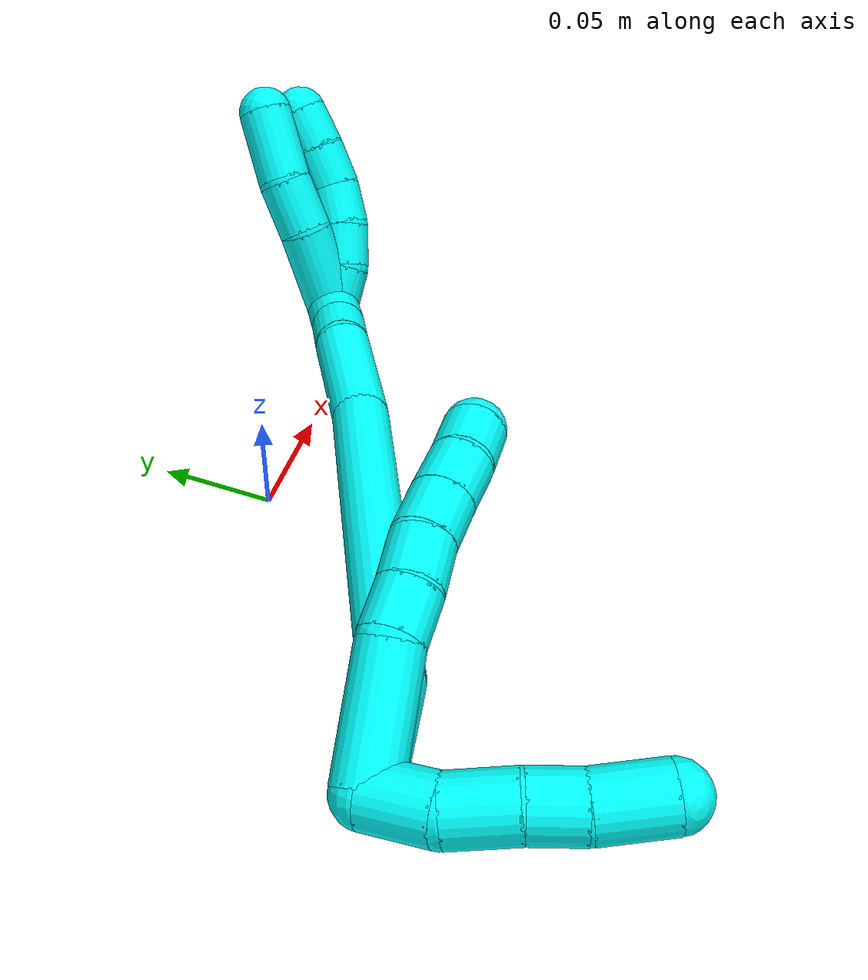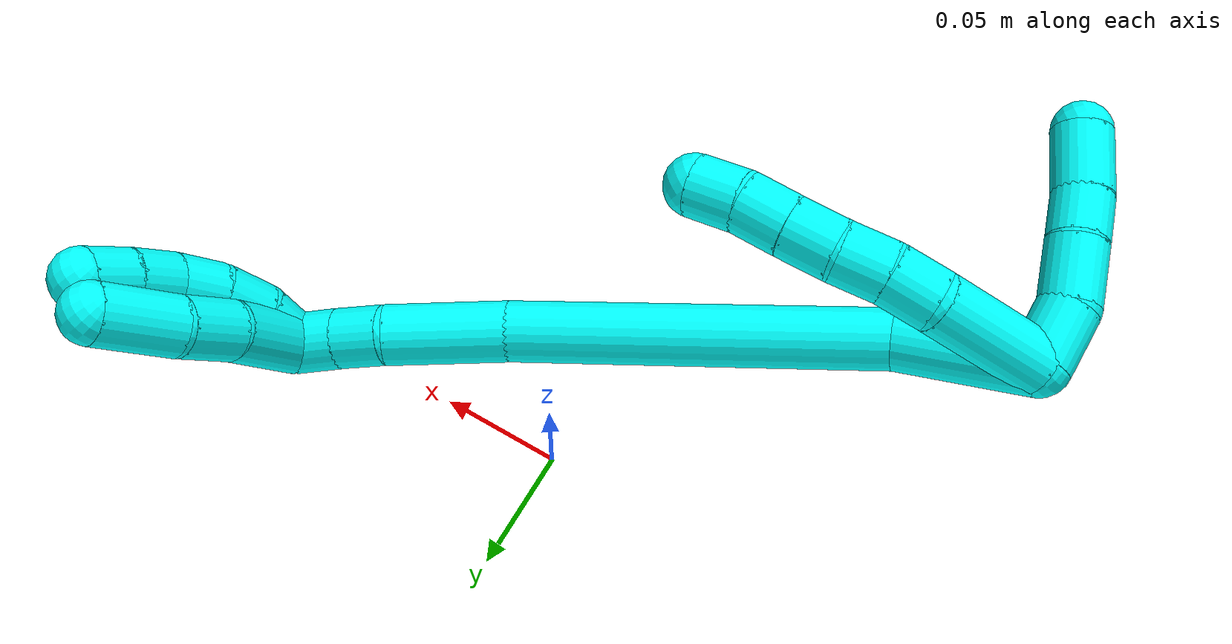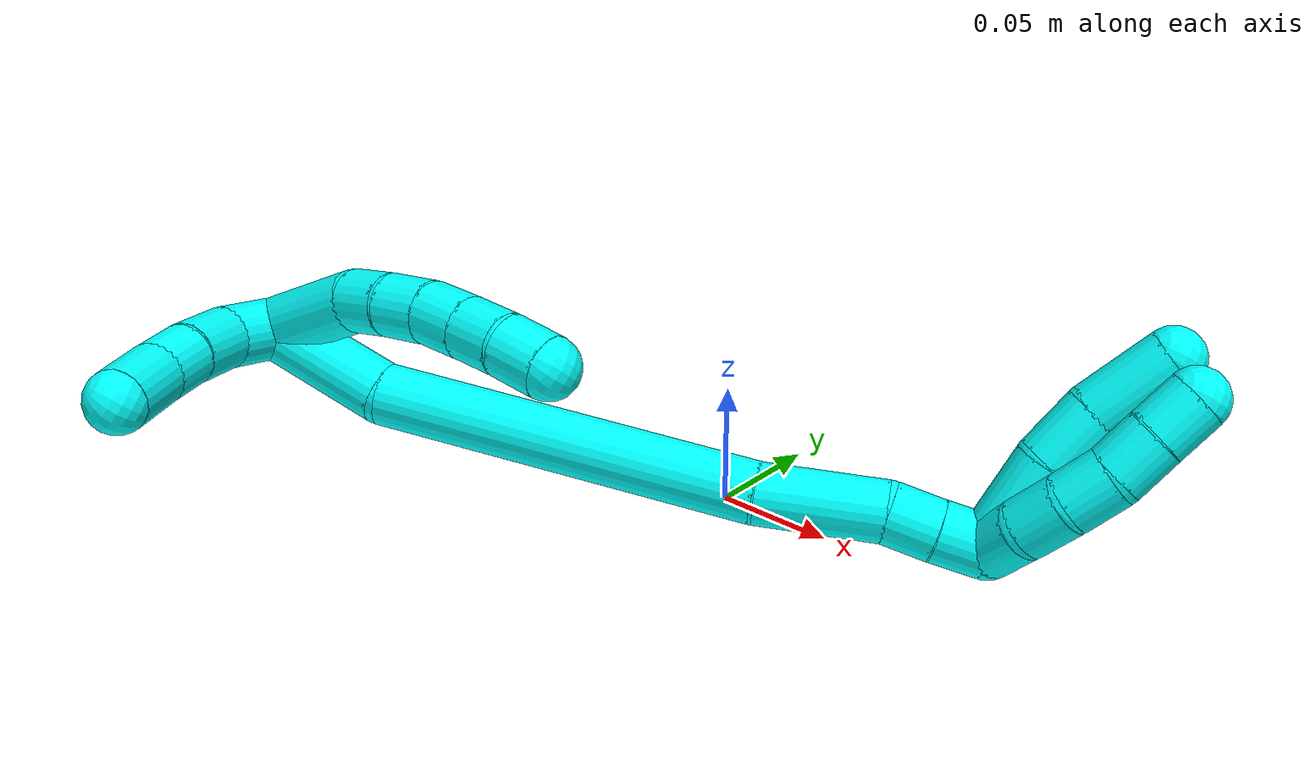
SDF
<sdf version="1.7">
 <world name="default">
  <model name="3">
   <static>0</static>
   <link name="3">
    <collision name="collision-cylinder-e_1_2_8">
     <pose>0.016312 0.017372 -0.006121 -1.90957 0.724807 -0.98343</pose>
     <geometry><cylinder><radius>0.0125</radius><length>0.049207</length></cylinder></geometry>
     <surface>
      <friction><ode><mu>1.16</mu><mu2>1.16</mu2><slip1>0</slip1><slip2>0</slip2></ode></friction>
      <contact><ode><kp>1e+06</kp><kd>1</kd><max_vel>0</max_vel><min_depth>0.001</min_depth></ode></contact>
     </surface>
    </collision>
    <visual name="visual-cylinder-e_1_2_8">
     <pose>0.016312 0.017372 -0.006121 -1.90957 0.724807 -0.98343</pose>
     <geometry><cylinder><radius>0.0125</radius><length>0.049207</length></cylinder></geometry>
     <material><ambient>0.003922 1 0.996078 1</ambient></material>
    </visual>
    <collision name="collision-cylinder-e_2_8_9">
     <pose>0.040752 0.039375 -0.016051 -2.25896 0.93523 -1.63744</pose>
     <geometry><cylinder><radius>0.0125</radius><length>0.020203</length></cylinder></geometry>
     <surface>
      <friction><ode><mu>1.16</mu><mu2>1.16</mu2><slip1>0</slip1><slip2>0</slip2></ode></friction>
      <contact><ode><kp>1e+06</kp><kd>1</kd><max_vel>0</max_vel><min_depth>0.001</min_depth></ode></contact>
     </surface>
    </collision>
    <visual name="visual-cylinder-e_2_8_9">
     <pose>0.040752 0.039375 -0.016051 -2.25896 0.93523 -1.63744</pose>
     <geometry><cylinder><radius>0.0125</radius><length>0.020203</length></cylinder></geometry>
     <material><ambient>0.003922 1 0.996078 1</ambient></material>
    </visual>
    <collision name="collision-cylinder-e_3_9_10">
     <pose>0.056436 0.048388 -0.024809 -2.41713 0.852023 -1.75008</pose>
     <geometry><cylinder><radius>0.0125</radius><length>0.020077</length></cylinder></geometry>
     <surface>
      <friction><ode><mu>1.16</mu><mu2>1.16</mu2><slip1>0</slip1><slip2>0</slip2></ode></friction>
      <contact><ode><kp>1e+06</kp><kd>1</kd><max_vel>0</max_vel><min_depth>0.001</min_depth></ode></contact>
     </surface>
    </collision>
    <visual name="visual-cylinder-e_3_9_10">
     <pose>0.056436 0.048388 -0.024809 -2.41713 0.852023 -1.75008</pose>
     <geometry><cylinder><radius>0.0125</radius><length>0.020077</length></cylinder></geometry>
     <material><ambient>0.003922 1 0.996078 1</ambient></material>
    </visual>
    <collision name="collision-cylinder-e_4_10_11">
     <pose>0.072403 0.055692 -0.034754 -2.61202 0.9681 -2.18929</pose>
     <geometry><cylinder><radius>0.0125</radius><length>0.020421</length></cylinder></geometry>
     <surface>
      <friction><ode><mu>1.16</mu><mu2>1.16</mu2><slip1>0</slip1><slip2>0</slip2></ode></friction>
      <contact><ode><kp>1e+06</kp><kd>1</kd><max_vel>0</max_vel><min_depth>0.001</min_depth></ode></contact>
     </surface>
    </collision>
    <visual name="visual-cylinder-e_4_10_11">
     <pose>0.072403 0.055692 -0.034754 -2.61202 0.9681 -2.18929</pose>
     <geometry><cylinder><radius>0.0125</radius><length>0.020421</length></cylinder></geometry>
     <material><ambient>0.003922 1 0.996078 1</ambient></material>
    </visual>
    <collision name="collision-cylinder-e_5_11_12">
     <pose>0.089229 0.061285 -0.044487 -2.62861 0.997072 -2.24371</pose>
     <geometry><cylinder><radius>0.0125</radius><length>0.020039</length></cylinder></geometry>
     <surface>
      <friction><ode><mu>1.16</mu><mu2>1.16</mu2><slip1>0</slip1><slip2>0</slip2></ode></friction>
      <contact><ode><kp>1e+06</kp><kd>1</kd><max_vel>0</max_vel><min_depth>0.001</min_depth></ode></contact>
     </surface>
    </collision>
    <visual name="visual-cylinder-e_5_11_12">
     <pose>0.089229 0.061285 -0.044487 -2.62861 0.997072 -2.24371</pose>
     <geometry><cylinder><radius>0.0125</radius><length>0.020039</length></cylinder></geometry>
     <material><ambient>0.003922 1 0.996078 1</ambient></material>
    </visual>
    <collision name="collision-cylinder-e_6_12_6">
     <pose>0.105307 0.066025 -0.055353 -2.81575 0.869673 -2.46132</pose>
     <geometry><cylinder><radius>0.0125</radius><length>0.020054</length></cylinder></geometry>
     <surface>
      <friction><ode><mu>1.16</mu><mu2>1.16</mu2><slip1>0</slip1><slip2>0</slip2></ode></friction>
      <contact><ode><kp>1e+06</kp><kd>1</kd><max_vel>0</max_vel><min_depth>0.001</min_depth></ode></contact>
     </surface>
    </collision>
    <visual name="visual-cylinder-e_6_12_6">
     <pose>0.105307 0.066025 -0.055353 -2.81575 0.869673 -2.46132</pose>
     <geometry><cylinder><radius>0.0125</radius><length>0.020054</length></cylinder></geometry>
     <material><ambient>0.003922 1 0.996078 1</ambient></material>
    </visual>
    <collision name="collision-cylinder-e_1_2_13">
     <pose>0.007383 -0.004744 0.009331 0.470357 0.614264 0.151703</pose>
     <geometry><cylinder><radius>0.0125</radius><length>0.02562</length></cylinder></geometry>
     <surface>
      <friction><ode><mu>1.16</mu><mu2>1.16</mu2><slip1>0</slip1><slip2>0</slip2></ode></friction>
      <contact><ode><kp>1e+06</kp><kd>1</kd><max_vel>0</max_vel><min_depth>0.001</min_depth></ode></contact>
     </surface>
    </collision>
    <visual name="visual-cylinder-e_1_2_13">
     <pose>0.007383 -0.004744 0.009331 0.470357 0.614264 0.151703</pose>
     <geometry><cylinder><radius>0.0125</radius><length>0.02562</length></cylinder></geometry>
     <material><ambient>0.003922 1 0.996078 1</ambient></material>
    </visual>
    <collision name="collision-cylinder-e_2_13_14">
     <pose>0.025455 -0.012914 0.025652 0.455692 0.941399 0.234889</pose>
     <geometry><cylinder><radius>0.0125</radius><length>0.026446</length></cylinder></geometry>
     <surface>
      <friction><ode><mu>1.16</mu><mu2>1.16</mu2><slip1>0</slip1><slip2>0</slip2></ode></friction>
      <contact><ode><kp>1e+06</kp><kd>1</kd><max_vel>0</max_vel><min_depth>0.001</min_depth></ode></contact>
     </surface>
    </collision>
    <visual name="visual-cylinder-e_2_13_14">
     <pose>0.025455 -0.012914 0.025652 0.455692 0.941399 0.234889</pose>
     <geometry><cylinder><radius>0.0125</radius><length>0.026446</length></cylinder></geometry>
     <material><ambient>0.003922 1 0.996078 1</ambient></material>
    </visual>
    <collision name="collision-cylinder-e_3_14_15">
     <pose>0.044163 -0.020063 0.037364 0.667719 0.927352 0.343451</pose>
     <geometry><cylinder><radius>0.0125</radius><length>0.020047</length></cylinder></geometry>
     <surface>
      <friction><ode><mu>1.16</mu><mu2>1.16</mu2><slip1>0</slip1><slip2>0</slip2></ode></friction>
      <contact><ode><kp>1e+06</kp><kd>1</kd><max_vel>0</max_vel><min_depth>0.001</min_depth></ode></contact>
     </surface>
    </collision>
    <visual name="visual-cylinder-e_3_14_15">
     <pose>0.044163 -0.020063 0.037364 0.667719 0.927352 0.343451</pose>
     <geometry><cylinder><radius>0.0125</radius><length>0.020047</length></cylinder></geometry>
     <material><ambient>0.003922 1 0.996078 1</ambient></material>
    </visual>
    <collision name="collision-cylinder-e_4_15_5">
     <pose>0.064307 -0.027604 0.047817 0.587567 1.05428 0.348627</pose>
     <geometry><cylinder><radius>0.0125</radius><length>0.027888</length></cylinder></geometry>
     <surface>
      <friction><ode><mu>1.16</mu><mu2>1.16</mu2><slip1>0</slip1><slip2>0</slip2></ode></friction>
      <contact><ode><kp>1e+06</kp><kd>1</kd><max_vel>0</max_vel><min_depth>0.001</min_depth></ode></contact>
     </surface>
    </collision>
    <visual name="visual-cylinder-e_4_15_5">
     <pose>0.064307 -0.027604 0.047817 0.587567 1.05428 0.348627</pose>
     <geometry><cylinder><radius>0.0125</radius><length>0.027888</length></cylinder></geometry>
     <material><ambient>0.003922 1 0.996078 1</ambient></material>
    </visual>
    <collision name="collision-cylinder-e_1_2_16">
     <pose>0.018332 0.004117 -0.020783 -2.94604 0.713271 -2.62673</pose>
     <geometry><cylinder><radius>0.0125</radius><length>0.056034</length></cylinder></geometry>
     <surface>
      <friction><ode><mu>1.16</mu><mu2>1.16</mu2><slip1>0</slip1><slip2>0</slip2></ode></friction>
      <contact><ode><kp>1e+06</kp><kd>1</kd><max_vel>0</max_vel><min_depth>0.001</min_depth></ode></contact>
     </surface>
    </collision>
    <visual name="visual-cylinder-e_1_2_16">
     <pose>0.018332 0.004117 -0.020783 -2.94604 0.713271 -2.62673</pose>
     <geometry><cylinder><radius>0.0125</radius><length>0.056034</length></cylinder></geometry>
     <material><ambient>0.003922 1 0.996078 1</ambient></material>
    </visual>
    <collision name="collision-cylinder-e_2_16_17">
     <pose>0.073889 0.037243 -0.101993 -2.69401 0.506955 -1.69985</pose>
     <geometry><cylinder><radius>0.0125</radius><length>0.153343</length></cylinder></geometry>
     <surface>
      <friction><ode><mu>1.16</mu><mu2>1.16</mu2><slip1>0</slip1><slip2>0</slip2></ode></friction>
      <contact><ode><kp>1e+06</kp><kd>1</kd><max_vel>0</max_vel><min_depth>0.001</min_depth></ode></contact>
     </surface>
    </collision>
    <visual name="visual-cylinder-e_2_16_17">
     <pose>0.073889 0.037243 -0.101993 -2.69401 0.506955 -1.69985</pose>
     <geometry><cylinder><radius>0.0125</radius><length>0.153343</length></cylinder></geometry>
     <material><ambient>0.003922 1 0.996078 1</ambient></material>
    </visual>
    <collision name="collision-cylinder-e_3_17_18">
     <pose>0.121468 0.078323 -0.182026 -2.58976 0.422574 -1.29661</pose>
     <geometry><cylinder><radius>0.0125</radius><length>0.050493</length></cylinder></geometry>
     <surface>
      <friction><ode><mu>1.16</mu><mu2>1.16</mu2><slip1>0</slip1><slip2>0</slip2></ode></friction>
      <contact><ode><kp>1e+06</kp><kd>1</kd><max_vel>0</max_vel><min_depth>0.001</min_depth></ode></contact>
     </surface>
    </collision>
    <visual name="visual-cylinder-e_3_17_18">
     <pose>0.121468 0.078323 -0.182026 -2.58976 0.422574 -1.29661</pose>
     <geometry><cylinder><radius>0.0125</radius><length>0.050493</length></cylinder></geometry>
     <material><ambient>0.003922 1 0.996078 1</ambient></material>
    </visual>
    <collision name="collision-cylinder-e_4_18_19">
     <pose>0.136161 0.093027 -0.210254 -2.84512 0.448653 -1.98256</pose>
     <geometry><cylinder><radius>0.0125</radius><length>0.020006</length></cylinder></geometry>
     <surface>
      <friction><ode><mu>1.16</mu><mu2>1.16</mu2><slip1>0</slip1><slip2>0</slip2></ode></friction>
      <contact><ode><kp>1e+06</kp><kd>1</kd><max_vel>0</max_vel><min_depth>0.001</min_depth></ode></contact>
     </surface>
    </collision>
    <visual name="visual-cylinder-e_4_18_19">
     <pose>0.136161 0.093027 -0.210254 -2.84512 0.448653 -1.98256</pose>
     <geometry><cylinder><radius>0.0125</radius><length>0.020006</length></cylinder></geometry>
     <material><ambient>0.003922 1 0.996078 1</ambient></material>
    </visual>
    <collision name="collision-cylinder-e_5_19_1">
     <pose>0.14446 0.098659 -0.227624 -2.81146 0.404586 -1.77733</pose>
     <geometry><cylinder><radius>0.0125</radius><length>0.020124</length></cylinder></geometry>
     <surface>
      <friction><ode><mu>1.16</mu><mu2>1.16</mu2><slip1>0</slip1><slip2>0</slip2></ode></friction>
      <contact><ode><kp>1e+06</kp><kd>1</kd><max_vel>0</max_vel><min_depth>0.001</min_depth></ode></contact>
     </surface>
    </collision>
    <visual name="visual-cylinder-e_5_19_1">
     <pose>0.14446 0.098659 -0.227624 -2.81146 0.404586 -1.77733</pose>
     <geometry><cylinder><radius>0.0125</radius><length>0.020124</length></cylinder></geometry>
     <material><ambient>0.003922 1 0.996078 1</ambient></material>
    </visual>
    <collision name="collision-cylinder-e_1_1_20">
     <pose>0.148947 0.121455 -0.234786 -1.49073 0.026453 -0.024416</pose>
     <geometry><cylinder><radius>0.0125</radius><length>0.039738</length></cylinder></geometry>
     <surface>
      <friction><ode><mu>1.16</mu><mu2>1.16</mu2><slip1>0</slip1><slip2>0</slip2></ode></friction>
      <contact><ode><kp>1e+06</kp><kd>1</kd><max_vel>0</max_vel><min_depth>0.001</min_depth></ode></contact>
     </surface>
    </collision>
    <visual name="visual-cylinder-e_1_1_20">
     <pose>0.148947 0.121455 -0.234786 -1.49073 0.026453 -0.024416</pose>
     <geometry><cylinder><radius>0.0125</radius><length>0.039738</length></cylinder></geometry>
     <material><ambient>0.003922 1 0.996078 1</ambient></material>
    </visual>
    <collision name="collision-cylinder-e_2_20_21">
     <pose>0.1501 0.153864 -0.234495 -1.67334 0.049479 -0.054829</pose>
     <geometry><cylinder><radius>0.0125</radius><length>0.025385</length></cylinder></geometry>
     <surface>
      <friction><ode><mu>1.16</mu><mu2>1.16</mu2><slip1>0</slip1><slip2>0</slip2></ode></friction>
      <contact><ode><kp>1e+06</kp><kd>1</kd><max_vel>0</max_vel><min_depth>0.001</min_depth></ode></contact>
     </surface>
    </collision>
    <visual name="visual-cylinder-e_2_20_21">
     <pose>0.1501 0.153864 -0.234495 -1.67334 0.049479 -0.054829</pose>
     <geometry><cylinder><radius>0.0125</radius><length>0.025385</length></cylinder></geometry>
     <material><ambient>0.003922 1 0.996078 1</ambient></material>
    </visual>
    <collision name="collision-cylinder-e_3_21_4">
     <pose>0.154507 0.183068 -0.239598 -1.79622 0.218454 -0.273597</pose>
     <geometry><cylinder><radius>0.0125</radius><length>0.034877</length></cylinder></geometry>
     <surface>
      <friction><ode><mu>1.16</mu><mu2>1.16</mu2><slip1>0</slip1><slip2>0</slip2></ode></friction>
      <contact><ode><kp>1e+06</kp><kd>1</kd><max_vel>0</max_vel><min_depth>0.001</min_depth></ode></contact>
     </surface>
    </collision>
    <visual name="visual-cylinder-e_3_21_4">
     <pose>0.154507 0.183068 -0.239598 -1.79622 0.218454 -0.273597</pose>
     <geometry><cylinder><radius>0.0125</radius><length>0.034877</length></cylinder></geometry>
     <material><ambient>0.003922 1 0.996078 1</ambient></material>
    </visual>
    <collision name="collision-cylinder-e_1_1_22">
     <pose>0.154703 0.109401 -0.23562 -1.47372 0.679251 -0.620459</pose>
     <geometry><cylinder><radius>0.0125</radius><length>0.02</length></cylinder></geometry>
     <surface>
      <friction><ode><mu>1.16</mu><mu2>1.16</mu2><slip1>0</slip1><slip2>0</slip2></ode></friction>
      <contact><ode><kp>1e+06</kp><kd>1</kd><max_vel>0</max_vel><min_depth>0.001</min_depth></ode></contact>
     </surface>
    </collision>
    <visual name="visual-cylinder-e_1_1_22">
     <pose>0.154703 0.109401 -0.23562 -1.47372 0.679251 -0.620459</pose>
     <geometry><cylinder><radius>0.0125</radius><length>0.02</length></cylinder></geometry>
     <material><ambient>0.003922 1 0.996078 1</ambient></material>
    </visual>
    <collision name="collision-cylinder-e_2_22_23">
     <pose>0.165476 0.126021 -0.235887 -1.6853 0.465728 -0.51997</pose>
     <geometry><cylinder><radius>0.0125</radius><length>0.02</length></cylinder></geometry>
     <surface>
      <friction><ode><mu>1.16</mu><mu2>1.16</mu2><slip1>0</slip1><slip2>0</slip2></ode></friction>
      <contact><ode><kp>1e+06</kp><kd>1</kd><max_vel>0</max_vel><min_depth>0.001</min_depth></ode></contact>
     </surface>
    </collision>
    <visual name="visual-cylinder-e_2_22_23">
     <pose>0.165476 0.126021 -0.235887 -1.6853 0.465728 -0.51997</pose>
     <geometry><cylinder><radius>0.0125</radius><length>0.02</length></cylinder></geometry>
     <material><ambient>0.003922 1 0.996078 1</ambient></material>
    </visual>
    <collision name="collision-cylinder-e_3_23_24">
     <pose>0.172703 0.144257 -0.239126 -1.8035 0.277141 -0.34917</pose>
     <geometry><cylinder><radius>0.0125</radius><length>0.02</length></cylinder></geometry>
     <surface>
      <friction><ode><mu>1.16</mu><mu2>1.16</mu2><slip1>0</slip1><slip2>0</slip2></ode></friction>
      <contact><ode><kp>1e+06</kp><kd>1</kd><max_vel>0</max_vel><min_depth>0.001</min_depth></ode></contact>
     </surface>
    </collision>
    <visual name="visual-cylinder-e_3_23_24">
     <pose>0.172703 0.144257 -0.239126 -1.8035 0.277141 -0.34917</pose>
     <geometry><cylinder><radius>0.0125</radius><length>0.02</length></cylinder></geometry>
     <material><ambient>0.003922 1 0.996078 1</ambient></material>
    </visual>
    <collision name="collision-cylinder-e_4_24_25">
     <pose>0.176136 0.163491 -0.242755 -1.71277 0.06977 -0.080441</pose>
     <geometry><cylinder><radius>0.0125</radius><length>0.02</length></cylinder></geometry>
     <surface>
      <friction><ode><mu>1.16</mu><mu2>1.16</mu2><slip1>0</slip1><slip2>0</slip2></ode></friction>
      <contact><ode><kp>1e+06</kp><kd>1</kd><max_vel>0</max_vel><min_depth>0.001</min_depth></ode></contact>
     </surface>
    </collision>
    <visual name="visual-cylinder-e_4_24_25">
     <pose>0.176136 0.163491 -0.242755 -1.71277 0.06977 -0.080441</pose>
     <geometry><cylinder><radius>0.0125</radius><length>0.02</length></cylinder></geometry>
     <material><ambient>0.003922 1 0.996078 1</ambient></material>
    </visual>
    <collision name="collision-cylinder-e_5_25_3">
     <pose>0.177079 0.183169 -0.24613 -1.76852 0.024611 -0.030029</pose>
     <geometry><cylinder><radius>0.0125</radius><length>0.02</length></cylinder></geometry>
     <surface>
      <friction><ode><mu>1.16</mu><mu2>1.16</mu2><slip1>0</slip1><slip2>0</slip2></ode></friction>
      <contact><ode><kp>1e+06</kp><kd>1</kd><max_vel>0</max_vel><min_depth>0.001</min_depth></ode></contact>
     </surface>
    </collision>
    <visual name="visual-cylinder-e_5_25_3">
     <pose>0.177079 0.183169 -0.24613 -1.76852 0.024611 -0.030029</pose>
     <geometry><cylinder><radius>0.0125</radius><length>0.02</length></cylinder></geometry>
     <material><ambient>0.003922 1 0.996078 1</ambient></material>
    </visual>
    <collision name="collision-sphere-3">
     <pose>0.177326 0.192971 -0.248094 0 -0 0</pose>
     <geometry><sphere><radius>0.0125</radius></sphere></geometry>
     <surface>
      <friction><ode><mu>1.16</mu><mu2>1.16</mu2><slip1>0</slip1><slip2>0</slip2></ode></friction>
      <contact><ode><kp>1e+06</kp><kd>1</kd><max_vel>0</max_vel><min_depth>0.001</min_depth></ode></contact>
     </surface>
    </collision>
    <visual name="visual-sphere-3">
     <pose>0.177326 0.192971 -0.248094 0 -0 0</pose>
     <geometry><sphere><radius>0.0125</radius></sphere></geometry>
     <material><ambient>0.003922 1 0.996078 1</ambient></material>
    </visual>
    <collision name="collision-sphere-25">
     <pose>0.176833 0.173366 -0.244167 0 -0 0</pose>
     <geometry><sphere><radius>0.0125</radius></sphere></geometry>
     <surface>
      <friction><ode><mu>1.16</mu><mu2>1.16</mu2><slip1>0</slip1><slip2>0</slip2></ode></friction>
      <contact><ode><kp>1e+06</kp><kd>1</kd><max_vel>0</max_vel><min_depth>0.001</min_depth></ode></contact>
     </surface>
    </collision>
    <visual name="visual-sphere-25">
     <pose>0.176833 0.173366 -0.244167 0 -0 0</pose>
     <geometry><sphere><radius>0.0125</radius></sphere></geometry>
     <material><ambient>0.003922 1 0.996078 1</ambient></material>
    </visual>
    <collision name="collision-sphere-24">
     <pose>0.175439 0.153616 -0.241344 0 -0 0</pose>
     <geometry><sphere><radius>0.0125</radius></sphere></geometry>
     <surface>
      <friction><ode><mu>1.16</mu><mu2>1.16</mu2><slip1>0</slip1><slip2>0</slip2></ode></friction>
      <contact><ode><kp>1e+06</kp><kd>1</kd><max_vel>0</max_vel><min_depth>0.001</min_depth></ode></contact>
     </surface>
    </collision>
    <visual name="visual-sphere-24">
     <pose>0.175439 0.153616 -0.241344 0 -0 0</pose>
     <geometry><sphere><radius>0.0125</radius></sphere></geometry>
     <material><ambient>0.003922 1 0.996078 1</ambient></material>
    </visual>
    <collision name="collision-sphere-23">
     <pose>0.169967 0.134897 -0.236907 0 -0 0</pose>
     <geometry><sphere><radius>0.0125</radius></sphere></geometry>
     <surface>
      <friction><ode><mu>1.16</mu><mu2>1.16</mu2><slip1>0</slip1><slip2>0</slip2></ode></friction>
      <contact><ode><kp>1e+06</kp><kd>1</kd><max_vel>0</max_vel><min_depth>0.001</min_depth></ode></contact>
     </surface>
    </collision>
    <visual name="visual-sphere-23">
     <pose>0.169967 0.134897 -0.236907 0 -0 0</pose>
     <geometry><sphere><radius>0.0125</radius></sphere></geometry>
     <material><ambient>0.003922 1 0.996078 1</ambient></material>
    </visual>
    <collision name="collision-sphere-22">
     <pose>0.160985 0.117145 -0.234866 0 -0 0</pose>
     <geometry><sphere><radius>0.0125</radius></sphere></geometry>
     <surface>
      <friction><ode><mu>1.16</mu><mu2>1.16</mu2><slip1>0</slip1><slip2>0</slip2></ode></friction>
      <contact><ode><kp>1e+06</kp><kd>1</kd><max_vel>0</max_vel><min_depth>0.001</min_depth></ode></contact>
     </surface>
    </collision>
    <visual name="visual-sphere-22">
     <pose>0.160985 0.117145 -0.234866 0 -0 0</pose>
     <geometry><sphere><radius>0.0125</radius></sphere></geometry>
     <material><ambient>0.003922 1 0.996078 1</ambient></material>
    </visual>
    <collision name="collision-sphere-4">
     <pose>0.158286 0.199661 -0.243403 0 -0 0</pose>
     <geometry><sphere><radius>0.0125</radius></sphere></geometry>
     <surface>
      <friction><ode><mu>1.16</mu><mu2>1.16</mu2><slip1>0</slip1><slip2>0</slip2></ode></friction>
      <contact><ode><kp>1e+06</kp><kd>1</kd><max_vel>0</max_vel><min_depth>0.001</min_depth></ode></contact>
     </surface>
    </collision>
    <visual name="visual-sphere-4">
     <pose>0.158286 0.199661 -0.243403 0 -0 0</pose>
     <geometry><sphere><radius>0.0125</radius></sphere></geometry>
     <material><ambient>0.003922 1 0.996078 1</ambient></material>
    </visual>
    <collision name="collision-sphere-21">
     <pose>0.150728 0.166474 -0.235792 0 -0 0</pose>
     <geometry><sphere><radius>0.0125</radius></sphere></geometry>
     <surface>
      <friction><ode><mu>1.16</mu><mu2>1.16</mu2><slip1>0</slip1><slip2>0</slip2></ode></friction>
      <contact><ode><kp>1e+06</kp><kd>1</kd><max_vel>0</max_vel><min_depth>0.001</min_depth></ode></contact>
     </surface>
    </collision>
    <visual name="visual-sphere-21">
     <pose>0.150728 0.166474 -0.235792 0 -0 0</pose>
     <geometry><sphere><radius>0.0125</radius></sphere></geometry>
     <material><ambient>0.003922 1 0.996078 1</ambient></material>
    </visual>
    <collision name="collision-sphere-20">
     <pose>0.149472 0.141254 -0.233197 0 -0 0</pose>
     <geometry><sphere><radius>0.0125</radius></sphere></geometry>
     <surface>
      <friction><ode><mu>1.16</mu><mu2>1.16</mu2><slip1>0</slip1><slip2>0</slip2></ode></friction>
      <contact><ode><kp>1e+06</kp><kd>1</kd><max_vel>0</max_vel><min_depth>0.001</min_depth></ode></contact>
     </surface>
    </collision>
    <visual name="visual-sphere-20">
     <pose>0.149472 0.141254 -0.233197 0 -0 0</pose>
     <geometry><sphere><radius>0.0125</radius></sphere></geometry>
     <material><ambient>0.003922 1 0.996078 1</ambient></material>
    </visual>
    <collision name="collision-sphere-12">
     <pose>0.097645 0.063954 -0.049226 0 -0 0</pose>
     <geometry><sphere><radius>0.0125</radius></sphere></geometry>
     <surface>
      <friction><ode><mu>1.16</mu><mu2>1.16</mu2><slip1>0</slip1><slip2>0</slip2></ode></friction>
      <contact><ode><kp>1e+06</kp><kd>1</kd><max_vel>0</max_vel><min_depth>0.001</min_depth></ode></contact>
     </surface>
    </collision>
    <visual name="visual-sphere-12">
     <pose>0.097645 0.063954 -0.049226 0 -0 0</pose>
     <geometry><sphere><radius>0.0125</radius></sphere></geometry>
     <material><ambient>0.003922 1 0.996078 1</ambient></material>
    </visual>
    <collision name="collision-sphere-11">
     <pose>0.080814 0.058616 -0.039749 0 -0 0</pose>
     <geometry><sphere><radius>0.0125</radius></sphere></geometry>
     <surface>
      <friction><ode><mu>1.16</mu><mu2>1.16</mu2><slip1>0</slip1><slip2>0</slip2></ode></friction>
      <contact><ode><kp>1e+06</kp><kd>1</kd><max_vel>0</max_vel><min_depth>0.001</min_depth></ode></contact>
     </surface>
    </collision>
    <visual name="visual-sphere-11">
     <pose>0.080814 0.058616 -0.039749 0 -0 0</pose>
     <geometry><sphere><radius>0.0125</radius></sphere></geometry>
     <material><ambient>0.003922 1 0.996078 1</ambient></material>
    </visual>
    <collision name="collision-sphere-10">
     <pose>0.063991 0.052768 -0.029759 0 -0 0</pose>
     <geometry><sphere><radius>0.0125</radius></sphere></geometry>
     <surface>
      <friction><ode><mu>1.16</mu><mu2>1.16</mu2><slip1>0</slip1><slip2>0</slip2></ode></friction>
      <contact><ode><kp>1e+06</kp><kd>1</kd><max_vel>0</max_vel><min_depth>0.001</min_depth></ode></contact>
     </surface>
    </collision>
    <visual name="visual-sphere-10">
     <pose>0.063991 0.052768 -0.029759 0 -0 0</pose>
     <geometry><sphere><radius>0.0125</radius></sphere></geometry>
     <material><ambient>0.003922 1 0.996078 1</ambient></material>
    </visual>
    <collision name="collision-sphere-9">
     <pose>0.048881 0.044007 -0.019859 0 -0 0</pose>
     <geometry><sphere><radius>0.0125</radius></sphere></geometry>
     <surface>
      <friction><ode><mu>1.16</mu><mu2>1.16</mu2><slip1>0</slip1><slip2>0</slip2></ode></friction>
      <contact><ode><kp>1e+06</kp><kd>1</kd><max_vel>0</max_vel><min_depth>0.001</min_depth></ode></contact>
     </surface>
    </collision>
    <visual name="visual-sphere-9">
     <pose>0.048881 0.044007 -0.019859 0 -0 0</pose>
     <geometry><sphere><radius>0.0125</radius></sphere></geometry>
     <material><ambient>0.003922 1 0.996078 1</ambient></material>
    </visual>
    <collision name="collision-sphere-2">
     <geometry><sphere><radius>0.0125</radius></sphere></geometry>
     <surface>
      <friction><ode><mu>1.16</mu><mu2>1.16</mu2><slip1>0</slip1><slip2>0</slip2></ode></friction>
      <contact><ode><kp>1e+06</kp><kd>1</kd><max_vel>0</max_vel><min_depth>0.001</min_depth></ode></contact>
     </surface>
    </collision>
    <visual name="visual-sphere-2">
     <geometry><sphere><radius>0.0125</radius></sphere></geometry>
     <material><ambient>0.003922 1 0.996078 1</ambient></material>
    </visual>
    <collision name="collision-sphere-19">
     <pose>0.1405 0.09566 -0.218874 0 -0 0</pose>
     <geometry><sphere><radius>0.0125</radius></sphere></geometry>
     <surface>
      <friction><ode><mu>1.16</mu><mu2>1.16</mu2><slip1>0</slip1><slip2>0</slip2></ode></friction>
      <contact><ode><kp>1e+06</kp><kd>1</kd><max_vel>0</max_vel><min_depth>0.001</min_depth></ode></contact>
     </surface>
    </collision>
    <visual name="visual-sphere-19">
     <pose>0.1405 0.09566 -0.218874 0 -0 0</pose>
     <geometry><sphere><radius>0.0125</radius></sphere></geometry>
     <material><ambient>0.003922 1 0.996078 1</ambient></material>
    </visual>
    <collision name="collision-sphere-8">
     <pose>0.032624 0.034744 -0.012242 0 -0 0</pose>
     <geometry><sphere><radius>0.0125</radius></sphere></geometry>
     <surface>
      <friction><ode><mu>1.16</mu><mu2>1.16</mu2><slip1>0</slip1><slip2>0</slip2></ode></friction>
      <contact><ode><kp>1e+06</kp><kd>1</kd><max_vel>0</max_vel><min_depth>0.001</min_depth></ode></contact>
     </surface>
    </collision>
    <visual name="visual-sphere-8">
     <pose>0.032624 0.034744 -0.012242 0 -0 0</pose>
     <geometry><sphere><radius>0.0125</radius></sphere></geometry>
     <material><ambient>0.003922 1 0.996078 1</ambient></material>
    </visual>
    <collision name="collision-sphere-6">
     <pose>0.112968 0.068095 -0.061481 0 -0 0</pose>
     <geometry><sphere><radius>0.0125</radius></sphere></geometry>
     <surface>
      <friction><ode><mu>1.16</mu><mu2>1.16</mu2><slip1>0</slip1><slip2>0</slip2></ode></friction>
      <contact><ode><kp>1e+06</kp><kd>1</kd><max_vel>0</max_vel><min_depth>0.001</min_depth></ode></contact>
     </surface>
    </collision>
    <visual name="visual-sphere-6">
     <pose>0.112968 0.068095 -0.061481 0 -0 0</pose>
     <geometry><sphere><radius>0.0125</radius></sphere></geometry>
     <material><ambient>0.003922 1 0.996078 1</ambient></material>
    </visual>
    <collision name="collision-sphere-13">
     <pose>0.014766 -0.009488 0.018663 0 -0 0</pose>
     <geometry><sphere><radius>0.0125</radius></sphere></geometry>
     <surface>
      <friction><ode><mu>1.16</mu><mu2>1.16</mu2><slip1>0</slip1><slip2>0</slip2></ode></friction>
      <contact><ode><kp>1e+06</kp><kd>1</kd><max_vel>0</max_vel><min_depth>0.001</min_depth></ode></contact>
     </surface>
    </collision>
    <visual name="visual-sphere-13">
     <pose>0.014766 -0.009488 0.018663 0 -0 0</pose>
     <geometry><sphere><radius>0.0125</radius></sphere></geometry>
     <material><ambient>0.003922 1 0.996078 1</ambient></material>
    </visual>
    <collision name="collision-sphere-14">
     <pose>0.036144 -0.016339 0.032642 0 -0 0</pose>
     <geometry><sphere><radius>0.0125</radius></sphere></geometry>
     <surface>
      <friction><ode><mu>1.16</mu><mu2>1.16</mu2><slip1>0</slip1><slip2>0</slip2></ode></friction>
      <contact><ode><kp>1e+06</kp><kd>1</kd><max_vel>0</max_vel><min_depth>0.001</min_depth></ode></contact>
     </surface>
    </collision>
    <visual name="visual-sphere-14">
     <pose>0.036144 -0.016339 0.032642 0 -0 0</pose>
     <geometry><sphere><radius>0.0125</radius></sphere></geometry>
     <material><ambient>0.003922 1 0.996078 1</ambient></material>
    </visual>
    <collision name="collision-sphere-15">
     <pose>0.052183 -0.023787 0.042086 0 -0 0</pose>
     <geometry><sphere><radius>0.0125</radius></sphere></geometry>
     <surface>
      <friction><ode><mu>1.16</mu><mu2>1.16</mu2><slip1>0</slip1><slip2>0</slip2></ode></friction>
      <contact><ode><kp>1e+06</kp><kd>1</kd><max_vel>0</max_vel><min_depth>0.001</min_depth></ode></contact>
     </surface>
    </collision>
    <visual name="visual-sphere-15">
     <pose>0.052183 -0.023787 0.042086 0 -0 0</pose>
     <geometry><sphere><radius>0.0125</radius></sphere></geometry>
     <material><ambient>0.003922 1 0.996078 1</ambient></material>
    </visual>
    <collision name="collision-sphere-5">
     <pose>0.076432 -0.031421 0.053549 0 -0 0</pose>
     <geometry><sphere><radius>0.0125</radius></sphere></geometry>
     <surface>
      <friction><ode><mu>1.16</mu><mu2>1.16</mu2><slip1>0</slip1><slip2>0</slip2></ode></friction>
      <contact><ode><kp>1e+06</kp><kd>1</kd><max_vel>0</max_vel><min_depth>0.001</min_depth></ode></contact>
     </surface>
    </collision>
    <visual name="visual-sphere-5">
     <pose>0.076432 -0.031421 0.053549 0 -0 0</pose>
     <geometry><sphere><radius>0.0125</radius></sphere></geometry>
     <material><ambient>0.003922 1 0.996078 1</ambient></material>
    </visual>
    <collision name="collision-sphere-16">
     <pose>0.036664 0.008234 -0.041567 0 -0 0</pose>
     <geometry><sphere><radius>0.0125</radius></sphere></geometry>
     <surface>
      <friction><ode><mu>1.16</mu><mu2>1.16</mu2><slip1>0</slip1><slip2>0</slip2></ode></friction>
      <contact><ode><kp>1e+06</kp><kd>1</kd><max_vel>0</max_vel><min_depth>0.001</min_depth></ode></contact>
     </surface>
    </collision>
    <visual name="visual-sphere-16">
     <pose>0.036664 0.008234 -0.041567 0 -0 0</pose>
     <geometry><sphere><radius>0.0125</radius></sphere></geometry>
     <material><ambient>0.003922 1 0.996078 1</ambient></material>
    </visual>
    <collision name="collision-sphere-17">
     <pose>0.111115 0.066252 -0.162419 0 -0 0</pose>
     <geometry><sphere><radius>0.0125</radius></sphere></geometry>
     <surface>
      <friction><ode><mu>1.16</mu><mu2>1.16</mu2><slip1>0</slip1><slip2>0</slip2></ode></friction>
      <contact><ode><kp>1e+06</kp><kd>1</kd><max_vel>0</max_vel><min_depth>0.001</min_depth></ode></contact>
     </surface>
    </collision>
    <visual name="visual-sphere-17">
     <pose>0.111115 0.066252 -0.162419 0 -0 0</pose>
     <geometry><sphere><radius>0.0125</radius></sphere></geometry>
     <material><ambient>0.003922 1 0.996078 1</ambient></material>
    </visual>
    <collision name="collision-sphere-18">
     <pose>0.131822 0.090394 -0.201634 0 -0 0</pose>
     <geometry><sphere><radius>0.0125</radius></sphere></geometry>
     <surface>
      <friction><ode><mu>1.16</mu><mu2>1.16</mu2><slip1>0</slip1><slip2>0</slip2></ode></friction>
      <contact><ode><kp>1e+06</kp><kd>1</kd><max_vel>0</max_vel><min_depth>0.001</min_depth></ode></contact>
     </surface>
    </collision>
    <visual name="visual-sphere-18">
     <pose>0.131822 0.090394 -0.201634 0 -0 0</pose>
     <geometry><sphere><radius>0.0125</radius></sphere></geometry>
     <material><ambient>0.003922 1 0.996078 1</ambient></material>
    </visual>
    <collision name="collision-sphere-1">
     <pose>0.148421 0.101657 -0.236374 0 -0 0</pose>
     <geometry><sphere><radius>0.0125</radius></sphere></geometry>
     <surface>
      <friction><ode><mu>1.16</mu><mu2>1.16</mu2><slip1>0</slip1><slip2>0</slip2></ode></friction>
      <contact><ode><kp>1e+06</kp><kd>1</kd><max_vel>0</max_vel><min_depth>0.001</min_depth></ode></contact>
     </surface>
    </collision>
    <visual name="visual-sphere-1">
     <pose>0.148421 0.101657 -0.236374 0 -0 0</pose>
     <geometry><sphere><radius>0.0125</radius></sphere></geometry>
     <material><ambient>0.003922 1 0.996078 1</ambient></material>
    </visual>
    <inertial>
     <pose>0.090454 0.064084 -0.110996 0 -0 0</pose>
     <mass>0.75</mass>
     <inertia>
      <ixx>-0.000284</ixx>
      <ixy>0</ixy>
      <ixz>0</ixz>
      <iyy>-0.000139</iyy>
      <iyz>0</iyz>
      <izz>-0.000365</izz>
     </inertia>
    </inertial>
   </link>
   <pose>-0.151725 -0.104781 0.06812 0.923159 -0.048549 -0.603455</pose>
  </model>
 </world>
</sdf>
